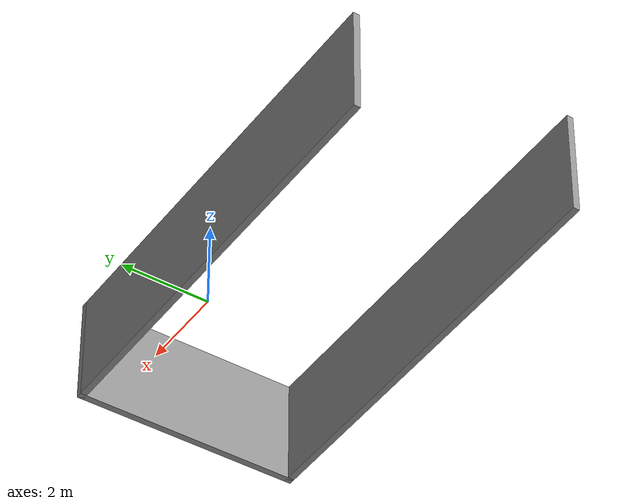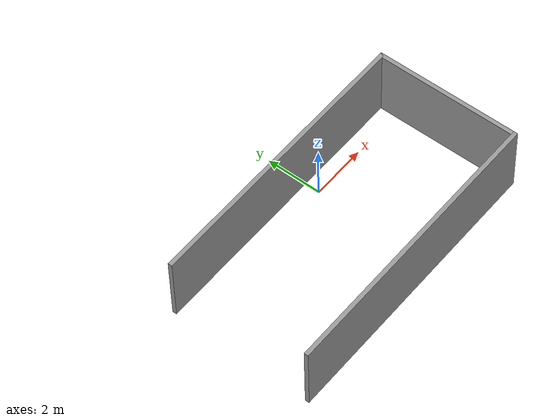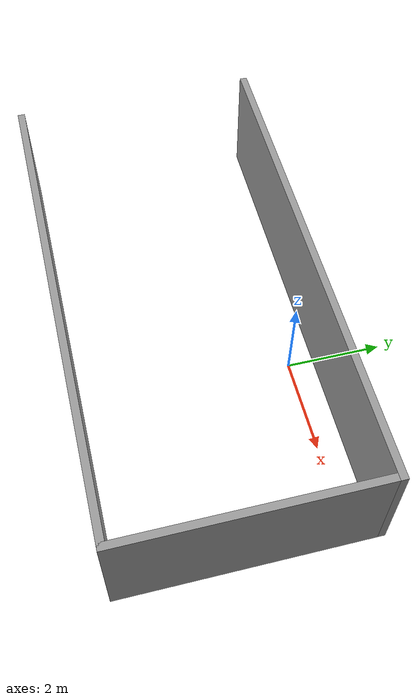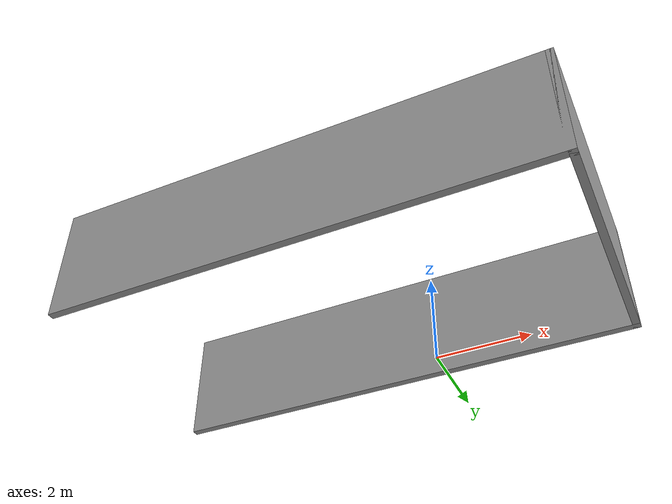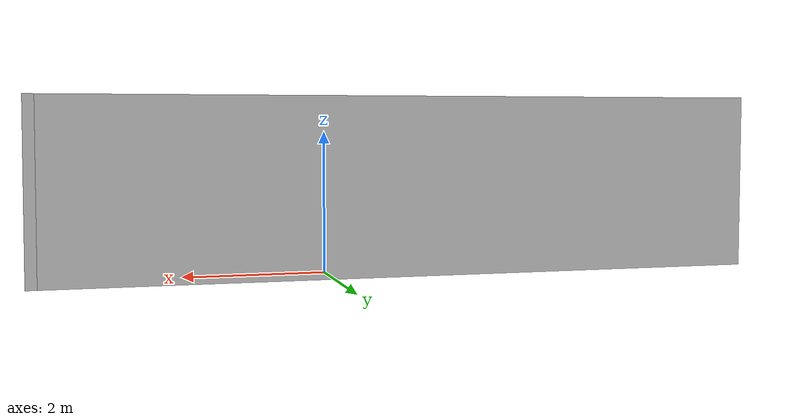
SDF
<?xml version='1.0'?>
<sdf version='1.7'>
  <model name='walls'>
    <pose>-1.10546 -1.94952 0 0 -0 0</pose>
    <link name='Wall_5'>
      <collision name='Wall_5_Collision'>
        <geometry>
          <box>
            <size>10.25 0.15 2.5</size>
          </box>
        </geometry>
        <pose>0 0 1.25 0 -0 0</pose>
      </collision>
      <visual name='Wall_5_Visual'>
        <pose>0 0 1.25 0 -0 0</pose>
        <geometry>
          <box>
            <size>10.25 0.15 2.5</size>
          </box>
        </geometry>
        <material>
          <script>
            <uri>file://media/materials/scripts/gazebo.material</uri>
            <name>Gazebo/Grey</name>
          </script>
          <ambient>1 1 1 1</ambient>
        </material>
        <meta>
          <layer>0</layer>
        </meta>
      </visual>
      <pose>-0 -2.55 0 0 -0 0</pose>
    </link>
    <link name='Wall_6'>
      <collision name='Wall_6_Collision'>
        <geometry>
          <box>
            <size>5.25 0.15 2.5</size>
          </box>
        </geometry>
        <pose>0 0 1.25 0 -0 0</pose>
      </collision>
      <visual name='Wall_6_Visual'>
        <pose>0 0 1.25 0 -0 0</pose>
        <geometry>
          <box>
            <size>5.25 0.15 2.5</size>
          </box>
        </geometry>
        <material>
          <script>
            <uri>file://media/materials/scripts/gazebo.material</uri>
            <name>Gazebo/Grey</name>
          </script>
          <ambient>1 1 1 1</ambient>
        </material>
        <meta>
          <layer>0</layer>
        </meta>
      </visual>
      <pose>5.05 0 0 0 -0 1.5708</pose>
    </link>
    <link name='Wall_7'>
      <collision name='Wall_7_Collision'>
        <geometry>
          <box>
            <size>10.25 0.15 2.5</size>
          </box>
        </geometry>
        <pose>0 0 1.25 0 -0 0</pose>
      </collision>
      <visual name='Wall_7_Visual'>
        <pose>0 0 1.25 0 -0 0</pose>
        <geometry>
          <box>
            <size>10.25 0.15 2.5</size>
          </box>
        </geometry>
        <material>
          <script>
            <uri>file://media/materials/scripts/gazebo.material</uri>
            <name>Gazebo/Grey</name>
          </script>
          <ambient>1 1 1 1</ambient>
        </material>
        <meta>
          <layer>0</layer>
        </meta>
      </visual>
      <pose>-0 2.55 0 0 -0 3.14159</pose>
    </link>
    <static>1</static>
  </model>
</sdf>
